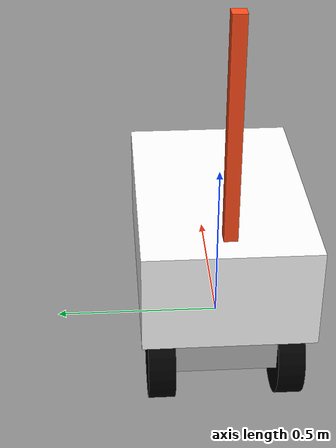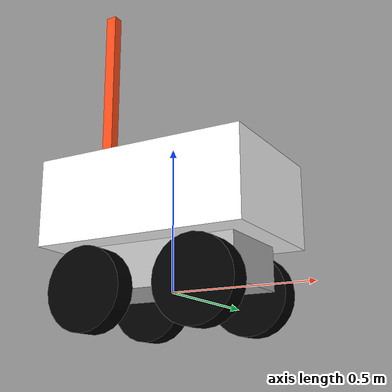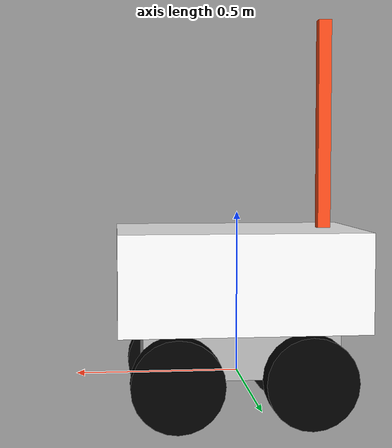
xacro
<?xml version="1.0"?>
<robot xmlns:xacro="http://www.ros.org/wiki/xacro"  >

 <xacro:include filename="inertial_macros.xacro"/>

 <material name="grey">
        <color rgba="0.7 0.7 0.7 1" />
    </material>

      <material name="green">
        <color rgba="0 0.6 0 1" />
    </material>

     <material name="white">
        <color rgba="1 1 1 1" />
    </material>

    <material name="red">
        <color rgba="1 0.2 0.2 0.2" />
    </material>

    <material name="orange">
        <color rgba="1 0.3 0.1 1"/>
    </material>

    <material name="blue">
        <color rgba="0.2 0.2 1 1"/>
    </material>

    <material name="black">
        <color rgba="0 0 0 1"/>
    </material>

    <!-- BASE LINK -->

    <link name="base_link">

    </link>

    <!-- CHASSIS LINK -->

    <joint name="chassis_joint" type="fixed">
        <parent link="base_link"/>
        <child link="chassis"/>
        <origin xyz="0 0 0.3"/>
    </joint>

    <link name="chassis">
        <visual>
            <origin xyz="0 0 0"/>
            <geometry>
                <box size="0.75 0.5 0.3"/>
            </geometry>
            <material name="white"/>
        </visual>
        <collision>
            <origin xyz="0 0 0"/>
            <geometry>
                <box size="0.75 0.5 0.3"/>
            </geometry>
        </collision>
        <xacro:inertial_box mass="0.5" x="0.75" y="0.5" z="0.3">
            <origin xyz="0 0 0" rpy="0 0 0"/>
        </xacro:inertial_box>
    </link>

    <!-- SUB_CHASSIS LINK -->

    <joint name="sub_chassis_joint" type="fixed">
        <parent link="base_link"/>
        <child link="sub_chassis"/>
        <origin xyz="0 0 0.075"/>
    </joint>

    <link name="sub_chassis">
        <visual>
            <origin xyz="0 0 0"/>
            <geometry>
                <box size="0.6 0.3 0.15"/>
            </geometry>
            <material name="grey"/>
        </visual>
        <collision>
            <origin xyz="0 0 0"/>
            <geometry>
                <box size="0.6 0.3 0.15"/>
            </geometry>
        </collision>
        <xacro:inertial_box mass="0.35" x="0.6" y="0.3" z="0.15">
            <origin xyz="0 0 0" rpy="0 0 0"/>
        </xacro:inertial_box>
    </link>

    <!-- PIPE LINK -->

    <joint name="pipe_joint" type="fixed">
        <parent link="base_link"/>
        <child link="pipe"/>
        <origin xyz="-0.275 0 0.775"/>
    </joint>

    <link name="pipe">
        <visual>
            <origin xyz="0 0 0"/>
            <geometry>
                <box size="0.04 0.04 0.65"/>
            </geometry>
            <material name="orange"/>
        </visual>
        <collision>
            <origin xyz="0 0 0"/>
            <geometry>
                <box size="0.04 0.04 .65"/>
            </geometry>
        </collision>
        <xacro:inertial_box mass="0.2" x="0.04" y="0.04" z="0.65">
            <origin xyz="0 0 0" rpy="0 0 0"/>
        </xacro:inertial_box>
    </link>

    <!-- FRONT RIGHT WHEEL LINK -->

    <joint name="front_right_wheel_joint" type="continuous">
        <parent link="base_link"/>
        <child link="front_right_wheel"/>
        <origin xyz="0.2 -0.19 0" rpy="${pi/2} 0 0" />
        <axis xyz="0 0 -1"/>
    </joint>

    <link name="front_right_wheel">
        <visual>
            <geometry>
                <cylinder radius="0.14" length="0.08"/>
            </geometry>
            <material name="black"/>
        </visual>
        <collision>
            <geometry>
                <cylinder radius="0.14" length="0.08"/>
            </geometry>
        </collision>
        <xacro:inertial_cylinder mass="0.1" length="0.08" radius="0.14">
            <origin xyz="0 0 0" rpy="0 0 0"/>
        </xacro:inertial_cylinder>
    </link>

    <!-- REAR LEFT WHEEL LINK -->

    <joint name="rear_left_wheel_joint" type="fixed">
        <parent link="base_link"/>
        <child link="rear_left_wheel"/>
        <origin xyz="-0.2 -0.19 0" rpy="${pi/2} 0 0" />
        <axis xyz="0 0 -1"/>
    </joint>

    <link name="rear_left_wheel">
        <visual>
            <geometry>
                <cylinder radius="0.14" length="0.08"/>
            </geometry>
            <material name="black"/>
        </visual>
        <collision>
            <geometry>
                <cylinder radius="0.14" length="0.08"/>
            </geometry>
        </collision>
        <xacro:inertial_cylinder mass="0.1" length="0.08" radius="0.14">
            <origin xyz="0 0 0" rpy="0 0 0"/>
        </xacro:inertial_cylinder>
    </link>

    <!-- FRONT LEFT WHEEL LINK -->

    <joint name="front_left_wheel_joint" type="continuous">
        <parent link="base_link"/>
        <child link="front_left_wheel"/>
        <origin xyz="0.2 0.19 0" rpy="-${pi/2} 0 0" />
        <axis xyz="0 0 1"/>
    </joint>

    <link name="front_left_wheel">
        <visual>
            <geometry>
                <cylinder radius="0.14" length="0.08"/>
            </geometry>
            <material name="black"/>
        </visual>
        <collision>
            <geometry>
                <cylinder radius="0.14" length="0.08"/>
            </geometry>
        </collision>
        <xacro:inertial_cylinder mass="0.1" length="0.08" radius="0.14">
            <origin xyz="0 0 0" rpy="0 0 0"/>
        </xacro:inertial_cylinder>
    </link>

    <!-- REAR RIGHT WHEEL LINK -->

    <joint name="rear_right_wheel_joint" type="fixed">
        <parent link="base_link"/>
        <child link="rear_right_wheel"/>
        <origin xyz="-0.2 0.19 0" rpy="-${pi/2} 0 0" />
        <axis xyz="0 0 1"/>
    </joint>

    <link name="rear_right_wheel">
        <visual>
            <geometry>
                <cylinder radius="0.14" length="0.08"/>
            </geometry>
            <material name="black"/>
        </visual>
        <collision>
            <geometry>
                <cylinder radius="0.14" length="0.08"/>
            </geometry>
        </collision>
        <xacro:inertial_cylinder mass="0.1" length="0.08" radius="0.14">
            <origin xyz="0 0 0" rpy="0 0 0"/>
        </xacro:inertial_cylinder>
    </link>

    <gazebo reference="chassis">
          <material>Gazebo/White</material>
    </gazebo>
    <gazebo reference="sub_chassis">
      <material>Gazebo/Grey</material>
    </gazebo>
    <gazebo reference="pipe">
      <material>Gazebo/Orange</material>
    </gazebo>
    <gazebo reference="rear_left_wheel">
      <material>Gazebo/Black</material>
      <mu1 value="0.001"/>
      <mu2 value="0.001"/>
    </gazebo>
    <gazebo reference="rear_right_wheel">
      <material>Gazebo/Black</material>
      <mu1 value="0.001"/>
      <mu2 value="0.001"/>
    </gazebo>
    <gazebo reference="front_left_wheel">
      <material>Gazebo/Black</material>

    </gazebo>
    <gazebo reference="front_right_wheel">
      <material>Gazebo/Black</material>

    </gazebo>

</robot>
